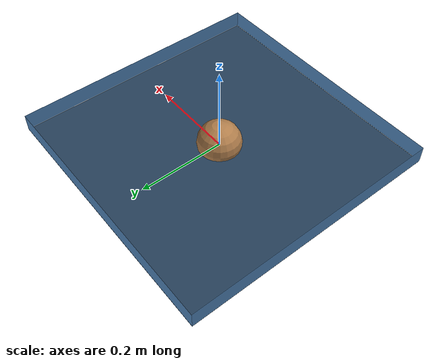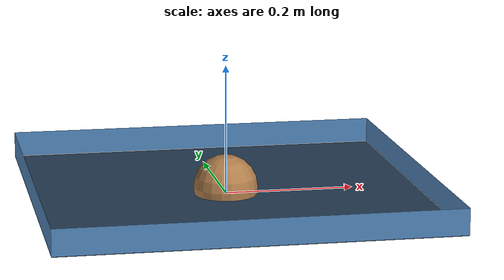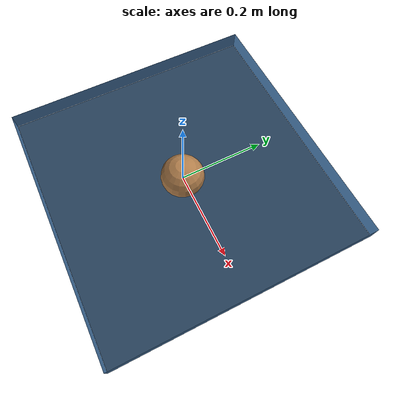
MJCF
<mujoco model="planar point mass">
  <include file="./common/skybox.xml"/>
  <include file="./common/visual.xml"/>
  <include file="./common/materials.xml"/>

  <option timestep="0.02" gravity="0 0 0">
    <flag contact="disable"/>
  </option>

  <default>
    <!-- limited="false" で上の見えない壁が無くなることを確認済み (seed: 1, episode: 14 に注目) -->
    <joint type="hinge" axis="0 0 1" limited="false" range="-.29 .29" damping="1"/>
    <motor gear=".1" ctrlrange="-1 1" ctrllimited="true"/>
  </default>

  <worldbody>
    <light name="light" pos="0 0 1"/>
    <camera name="top" pos="0 0 .75" quat="1 0 0 0"/>

    <!-- Changed/added by Sugar -->
    <camera name="x side" pos="0 -0.75 0.2" quat="0.7 0.7 -0.0005628638 0.0005633122"/>
    <camera name="y side" pos="-0.89  0.03  0.54" quat="-0.58257527 -0.37451267  0.39531893  0.60338152"/>

    <geom name="ground" type="plane" pos="0 0 0" size=".3 .3 .1" material="grid"/>
    <geom name="wall_x" type="plane" pos="-.3 0 .02" zaxis="1 0 0"  size=".02 .3 .02" material="decoration"/>
    <geom name="wall_y" type="plane" pos="0 -.3 .02" zaxis="0 1 0"  size=".3 .02 .02" material="decoration"/>
    <geom name="wall_neg_x" type="plane" pos=".3 0 .02" zaxis="-1 0 0"  size=".02 .3 .02" material="decoration"/>
    <geom name="wall_neg_y" type="plane" pos="0 .3 .02" zaxis="0 -1 0"  size=".3 .02 .02" material="decoration"/>

    <body name="pointmass" pos="0 0 .01">
      <camera name="self" pos="0 0 0.5" quat="1 0 0 0"/>
      <joint name="root_x" type="slide"  pos="0 0 0" axis="1 0 0" />
      <joint name="root_y" type="slide"  pos="0 0 0" axis="0 1 0" />
      <joint name="root_z" type="slide"  pos="0 0 0" axis="0 0 1" />

      <geom name="pointmass" type="sphere" size=".05" material="self" mass=".3"/>
    </body>

    <!-- Changed/added by Sugar -->
    <!-- size=".015" -> size=".03" -->
    <geom name="target" pos="0 0 .01" material="target" type="sphere" size=".015"/>
  </worldbody>

  <tendon>
    <fixed name="t1">
      <joint joint="root_x" coef="1"/>
      <joint joint="root_y" coef="0"/>
      <joint joint="root_z" coef="0"/>
    </fixed>
    <fixed name="t2">
      <joint joint="root_x" coef="0"/>
      <joint joint="root_y" coef="1"/>
      <joint joint="root_z" coef="0"/>
    </fixed>
    <fixed name="t3">
      <joint joint="root_x" coef="0"/>
      <joint joint="root_y" coef="0"/>
      <joint joint="root_z" coef="1"/>
    </fixed>
  </tendon>

  <actuator>
    <motor name="t1" tendon="t1"/>
    <motor name="t2" tendon="t2"/>
    <motor name="t3" tendon="t3"/>
  </actuator>
</mujoco>

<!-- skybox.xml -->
<mujoco>
    <asset>
        <texture name="skybox" type="skybox" builtin="gradient" rgb1=".4 .6 .8" rgb2="0 0 0"
                 width="800" height="800" mark="random" markrgb="1 1 1"/>
    </asset>
</mujoco>

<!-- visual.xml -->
<mujoco>
    <visual>
        <headlight ambient=".4 .4 .4" diffuse=".8 .8 .8" specular="0.1 0.1 0.1"/>
        <map znear=".01"/>
        <quality shadowsize="2048"/>
    </visual>
</mujoco>

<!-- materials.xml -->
<!--
Common textures, colors and materials to be used throughout this suite. Some
materials such as xxx_highlight are activated on occurence of certain events,
for example receiving a positive reward.
-->
<mujoco>
    <asset>
        <texture name="grid" type="2d" builtin="checker" rgb1=".1 .2 .3" rgb2=".2 .3 .4" width="300" height="300" mark="edge" markrgb=".2 .3 .4"/>
        <material name="grid" texture="grid" texrepeat="1 1" texuniform="true" reflectance=".2"/>
        <material name="self" rgba=".7 .5 .3 1"/>
        <material name="self_default" rgba=".7 .5 .3 1"/>
        <material name="self_highlight" rgba="0 .5 .3 1"/>
        <material name="effector" rgba=".7 .4 .2 1"/>
        <material name="effector_default" rgba=".7 .4 .2 1"/>
        <material name="effector_highlight" rgba="0 .5 .3 1"/>
        <material name="decoration" rgba=".3 .5 .7 1"/>
        <material name="eye" rgba="0 .2 1 1"/>
        <material name="target" rgba=".6 .3 .3 1"/>
        <material name="target_default" rgba=".6 .3 .3 1"/>
        <material name="target_highlight" rgba=".6 .3 .3 .4"/>
        <material name="site" rgba=".5 .5 .5 .3"/>
    </asset>
</mujoco>
